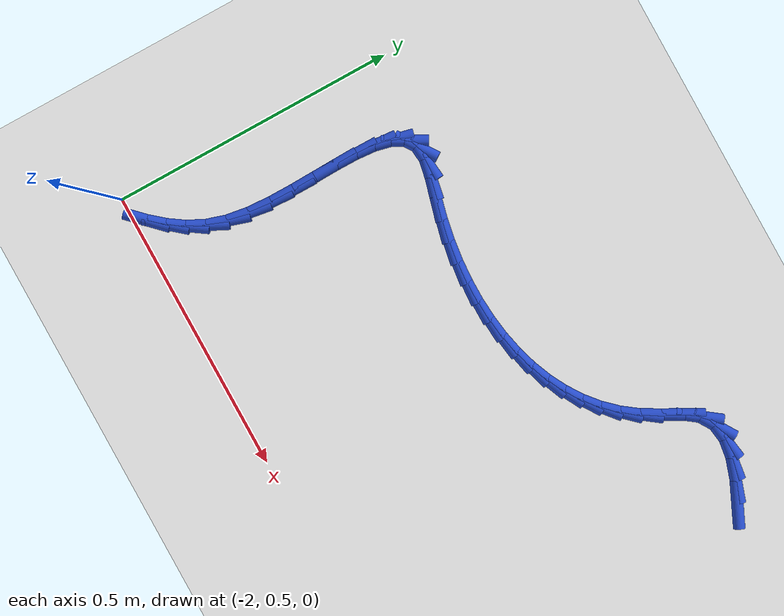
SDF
<sdf version="1.6">
 <world name="default">
  <model name="ground_plane">
   <static>1</static>
   <link name="link">
    <collision name="collision">
     <geometry><plane><normal>0 0 1</normal><size>100 100</size></plane></geometry>
     <surface><friction><ode><mu>100</mu><mu2>50</mu2></ode></friction></surface>
    </collision>
    <visual name="visual">
     <cast_shadows>0</cast_shadows>
     <geometry><plane><normal>0 0 1</normal><size>100 100</size></plane></geometry>
     <material>
      <script><uri>file://media/materials/scripts/gazebo.material</uri><name>Gazebo/WhiteGlow</name></script>
     </material>
    </visual>
   </link>
  </model>
  <model name="line">
   <link name="link_58">
    <pose>-1.062486696908605 1.1520410922666753 0.01 0 1.57 -0.4289050384086867</pose>
    <collision name="collision">
     <geometry><cylinder><radius>0.01</radius><length>0.08</length></cylinder></geometry>
    </collision>
    <visual name="visual">
     <material>
      <script><name>Gazebo/Blue</name><uri>file://media/materials/scripts/gazebo.material</uri></script>
     </material>
     <geometry><cylinder><radius>0.01</radius><length>0.08</length></cylinder></geometry>
    </visual>
   </link>
   <link name="link_59">
    <pose>-1.1007309052672283 1.169530031824163 0.01 0 1.57 -0.32081166647994497</pose>
    <collision name="collision">
     <geometry><cylinder><radius>0.01</radius><length>0.08</length></cylinder></geometry>
    </collision>
    <visual name="visual">
     <material>
      <script><name>Gazebo/Blue</name><uri>file://media/materials/scripts/gazebo.material</uri></script>
     </material>
     <geometry><cylinder><radius>0.01</radius><length>0.08</length></cylinder></geometry>
    </visual>
   </link>
   <link name="link_60">
    <pose>-1.136575134614414 1.1814407269458471 0.01 0 1.57 -0.14341825878485148</pose>
    <collision name="collision">
     <geometry><cylinder><radius>0.01</radius><length>0.08</length></cylinder></geometry>
    </collision>
    <visual name="visual">
     <material>
      <script><name>Gazebo/Blue</name><uri>file://media/materials/scripts/gazebo.material</uri></script>
     </material>
     <geometry><cylinder><radius>0.01</radius><length>0.08</length></cylinder></geometry>
    </visual>
   </link>
   <link name="link_61">
    <pose>-1.1691019901014656 1.1861379213846197 0.01 0 1.57 0.14569953491411228</pose>
    <collision name="collision">
     <geometry><cylinder><radius>0.01</radius><length>0.08</length></cylinder></geometry>
    </collision>
    <visual name="visual">
     <material>
      <script><name>Gazebo/Blue</name><uri>file://media/materials/scripts/gazebo.material</uri></script>
     </material>
     <geometry><cylinder><radius>0.01</radius><length>0.08</length></cylinder></geometry>
    </visual>
   </link>
   <link name="link_62">
    <pose>-1.1973940768796858 1.1819863588933726 0.01 0 1.57 0.5636500221404637</pose>
    <collision name="collision">
     <geometry><cylinder><radius>0.01</radius><length>0.08</length></cylinder></geometry>
    </collision>
    <visual name="visual">
     <material>
      <script><name>Gazebo/Blue</name><uri>file://media/materials/scripts/gazebo.material</uri></script>
     </material>
     <geometry><cylinder><radius>0.01</radius><length>0.08</length></cylinder></geometry>
    </visual>
   </link>
   <link name="link_63">
    <pose>-1.2205383273197519 1.1673581293471802 0.01 0 1.57 0.9375242739846468</pose>
    <collision name="collision">
     <geometry><cylinder><radius>0.01</radius><length>0.08</length></cylinder></geometry>
    </collision>
    <visual name="visual">
     <material>
      <script><name>Gazebo/Blue</name><uri>file://media/materials/scripts/gazebo.material</uri></script>
     </material>
     <geometry><cylinder><radius>0.01</radius><length>0.08</length></cylinder></geometry>
    </visual>
   </link>
   <link name="link_64">
    <pose>-1.238753407983604 1.1425466159339859 0.01 0 1.57 1.0801588958837494</pose>
    <collision name="collision">
     <geometry><cylinder><radius>0.01</radius><length>0.08</length></cylinder></geometry>
    </collision>
    <visual name="visual">
     <material>
      <script><name>Gazebo/Blue</name><uri>file://media/materials/scripts/gazebo.material</uri></script>
     </material>
     <geometry><cylinder><radius>0.01</radius><length>0.08</length></cylinder></geometry>
    </visual>
   </link>
   <link name="link_65">
    <pose>-1.2548974371059798 1.1123260780825786 0.01 0 1.57 1.0526980294535568</pose>
    <collision name="collision">
     <geometry><cylinder><radius>0.01</radius><length>0.08</length></cylinder></geometry>
    </collision>
    <visual name="visual">
     <material>
      <script><name>Gazebo/Blue</name><uri>file://media/materials/scripts/gazebo.material</uri></script>
     </material>
     <geometry><cylinder><radius>0.01</radius><length>0.08</length></cylinder></geometry>
    </visual>
   </link>
   <link name="link_66">
    <pose>-1.2721612819006145 1.0820407266860472 0.01 0 1.57 0.9372776419822589</pose>
    <collision name="collision">
     <geometry><cylinder><radius>0.01</radius><length>0.08</length></cylinder></geometry>
    </collision>
    <visual name="visual">
     <material>
      <script><name>Gazebo/Blue</name><uri>file://media/materials/scripts/gazebo.material</uri></script>
     </material>
     <geometry><cylinder><radius>0.01</radius><length>0.08</length></cylinder></geometry>
    </visual>
   </link>
   <link name="link_67">
    <pose>-1.2922511116314963 1.0546896834798576 0.01 0 1.57 0.8176120668281966</pose>
    <collision name="collision">
     <geometry><cylinder><radius>0.01</radius><length>0.08</length></cylinder></geometry>
    </collision>
    <visual name="visual">
     <material>
      <script><name>Gazebo/Blue</name><uri>file://media/materials/scripts/gazebo.material</uri></script>
     </material>
     <geometry><cylinder><radius>0.01</radius><length>0.08</length></cylinder></geometry>
    </visual>
   </link>
   <link name="link_68">
    <pose>-1.3150424403924694 1.0303805395742782 0.01 0 1.57 0.7015213070041155</pose>
    <collision name="collision">
     <geometry><cylinder><radius>0.01</radius><length>0.08</length></cylinder></geometry>
    </collision>
    <visual name="visual">
     <material>
      <script><name>Gazebo/Blue</name><uri>file://media/materials/scripts/gazebo.material</uri></script>
     </material>
     <geometry><cylinder><radius>0.01</radius><length>0.08</length></cylinder></geometry>
    </visual>
   </link>
   <link name="link_69">
    <pose>-1.3402978207778222 1.0090424627256023 0.01 0 1.57 0.5909321300325567</pose>
    <collision name="collision">
     <geometry><cylinder><radius>0.01</radius><length>0.08</length></cylinder></geometry>
    </collision>
    <visual name="visual">
     <material>
      <script><name>Gazebo/Blue</name><uri>file://media/materials/scripts/gazebo.material</uri></script>
     </material>
     <geometry><cylinder><radius>0.01</radius><length>0.08</length></cylinder></geometry>
    </visual>
   </link>
   <link name="link_70">
    <pose>-1.3677798053818442 0.9906046206901238 0.01 0 1.57 0.4870601055811412</pose>
    <collision name="collision">
     <geometry><cylinder><radius>0.01</radius><length>0.08</length></cylinder></geometry>
    </collision>
    <visual name="visual">
     <material>
      <script><name>Gazebo/Blue</name><uri>file://media/materials/scripts/gazebo.material</uri></script>
     </material>
     <geometry><cylinder><radius>0.01</radius><length>0.08</length></cylinder></geometry>
    </visual>
   </link>
   <link name="link_71">
    <pose>-1.3972509467988241 0.974996181224137 0.01 0 1.57 0.39042632257762094</pose>
    <collision name="collision">
     <geometry><cylinder><radius>0.01</radius><length>0.08</length></cylinder></geometry>
    </collision>
    <visual name="visual">
     <material>
      <script><name>Gazebo/Blue</name><uri>file://media/materials/scripts/gazebo.material</uri></script>
     </material>
     <geometry><cylinder><radius>0.01</radius><length>0.08</length></cylinder></geometry>
    </visual>
   </link>
   <link name="link_72">
    <pose>-1.428473797623051 0.9621463120839354 0.01 0 1.57 0.30098536017209043</pose>
    <collision name="collision">
     <geometry><cylinder><radius>0.01</radius><length>0.08</length></cylinder></geometry>
    </collision>
    <visual name="visual">
     <material>
      <script><name>Gazebo/Blue</name><uri>file://media/materials/scripts/gazebo.material</uri></script>
     </material>
     <geometry><cylinder><radius>0.01</radius><length>0.08</length></cylinder></geometry>
    </visual>
   </link>
   <link name="link_73">
    <pose>-1.4612109104488142 0.951984181025813 0.01 0 1.57 0.21829278797396418</pose>
    <collision name="collision">
     <geometry><cylinder><radius>0.01</radius><length>0.08</length></cylinder></geometry>
    </collision>
    <visual name="visual">
     <material>
      <script><name>Gazebo/Blue</name><uri>file://media/materials/scripts/gazebo.material</uri></script>
     </material>
     <geometry><cylinder><radius>0.01</radius><length>0.08</length></cylinder></geometry>
    </visual>
   </link>
   <link name="link_74">
    <pose>-1.4952248378704032 0.9444389558060627 0.01 0 1.57 0.14166047389862013</pose>
    <collision name="collision">
     <geometry><cylinder><radius>0.01</radius><length>0.08</length></cylinder></geometry>
    </collision>
    <visual name="visual">
     <material>
      <script><name>Gazebo/Blue</name><uri>file://media/materials/scripts/gazebo.material</uri></script>
     </material>
     <geometry><cylinder><radius>0.01</radius><length>0.08</length></cylinder></geometry>
    </visual>
   </link>
   <link name="link_75">
    <pose>-1.5302781324821064 0.9394398041809794 0.01 0 1.57 0.07027580262535414</pose>
    <collision name="collision">
     <geometry><cylinder><radius>0.01</radius><length>0.08</length></cylinder></geometry>
    </collision>
    <visual name="visual">
     <material>
      <script><name>Gazebo/Blue</name><uri>file://media/materials/scripts/gazebo.material</uri></script>
     </material>
     <geometry><cylinder><radius>0.01</radius><length>0.08</length></cylinder></geometry>
    </visual>
   </link>
   <link name="link_76">
    <pose>-1.5661333468782126 0.936915893906856 0.01 0 1.57 0.0032812126788304657</pose>
    <collision name="collision">
     <geometry><cylinder><radius>0.01</radius><length>0.08</length></cylinder></geometry>
    </collision>
    <visual name="visual">
     <material>
      <script><name>Gazebo/Blue</name><uri>file://media/materials/scripts/gazebo.material</uri></script>
     </material>
     <geometry><cylinder><radius>0.01</radius><length>0.08</length></cylinder></geometry>
    </visual>
   </link>
   <link name="link_77">
    <pose>-1.6025530336530118 0.9367963927399872 0.01 0 1.57 -0.06017959501228952</pose>
    <collision name="collision">
     <geometry><cylinder><radius>0.01</radius><length>0.08</length></cylinder></geometry>
    </collision>
    <visual name="visual">
     <material>
      <script><name>Gazebo/Blue</name><uri>file://media/materials/scripts/gazebo.material</uri></script>
     </material>
     <geometry><cylinder><radius>0.01</radius><length>0.08</length></cylinder></geometry>
    </visual>
   </link>
   <link name="link_78">
    <pose>-1.6392997454007927 0.939010468436666 0.01 0 1.57 -0.12093977044117313</pose>
    <collision name="collision">
     <geometry><cylinder><radius>0.01</radius><length>0.08</length></cylinder></geometry>
    </collision>
    <visual name="visual">
     <material>
      <script><name>Gazebo/Blue</name><uri>file://media/materials/scripts/gazebo.material</uri></script>
     </material>
     <geometry><cylinder><radius>0.01</radius><length>0.08</length></cylinder></geometry>
    </visual>
   </link>
   <link name="link_79">
    <pose>-1.6761360347158436 0.9434872887531863 0.01 0 1.57 -0.1798036585077314</pose>
    <collision name="collision">
     <geometry><cylinder><radius>0.01</radius><length>0.08</length></cylinder></geometry>
    </collision>
    <visual name="visual">
     <material>
      <script><name>Gazebo/Blue</name><uri>file://media/materials/scripts/gazebo.material</uri></script>
     </material>
     <geometry><cylinder><radius>0.01</radius><length>0.08</length></cylinder></geometry>
    </visual>
   </link>
   <link name="link_80">
    <pose>-1.7128244541924547 0.950156021445842 0.01 0 1.57 -0.2373349855445848</pose>
    <collision name="collision">
     <geometry><cylinder><radius>0.01</radius><length>0.08</length></cylinder></geometry>
    </collision>
    <visual name="visual">
     <material>
      <script><name>Gazebo/Blue</name><uri>file://media/materials/scripts/gazebo.material</uri></script>
     </material>
     <geometry><cylinder><radius>0.01</radius><length>0.08</length></cylinder></geometry>
    </visual>
   </link>
   <link name="link_81">
    <pose>-1.7491224515154316 0.9589362864791022 0.01 0 1.57 -0.2638277677272516</pose>
    <collision name="collision">
     <geometry><cylinder><radius>0.01</radius><length>0.08</length></cylinder></geometry>
    </collision>
    <visual name="visual">
     <material>
      <script><name>Gazebo/Blue</name><uri>file://media/materials/scripts/gazebo.material</uri></script>
     </material>
     <geometry><cylinder><radius>0.01</radius><length>0.08</length></cylinder></geometry>
    </visual>
   </link>
   <link name="link_82">
    <pose>-1.7840516717752724 0.9683715207493558 0.01 0 1.57 -0.18549093791289198</pose>
    <collision name="collision">
     <geometry><cylinder><radius>0.01</radius><length>0.08</length></cylinder></geometry>
    </collision>
    <visual name="visual">
     <material>
      <script><name>Gazebo/Blue</name><uri>file://media/materials/scripts/gazebo.material</uri></script>
     </material>
     <geometry><cylinder><radius>0.01</radius><length>0.08</length></cylinder></geometry>
    </visual>
   </link>
   <link name="link_83">
    <pose>-1.8151363305515076 0.9742044953839641 0.01 0 1.57 0.0914731281070664</pose>
    <collision name="collision">
     <geometry><cylinder><radius>0.01</radius><length>0.08</length></cylinder></geometry>
    </collision>
    <visual name="visual">
     <material>
      <script><name>Gazebo/Blue</name><uri>file://media/materials/scripts/gazebo.material</uri></script>
     </material>
     <geometry><cylinder><radius>0.01</radius><length>0.08</length></cylinder></geometry>
    </visual>
   </link>
   <link name="link_84">
    <pose>-1.8397866451607399 0.9719433438743926 0.01 0 1.57 0.6060923670369702</pose>
    <collision name="collision">
     <geometry><cylinder><radius>0.01</radius><length>0.08</length></cylinder></geometry>
    </collision>
    <visual name="visual">
     <material>
      <script><name>Gazebo/Blue</name><uri>file://media/materials/scripts/gazebo.material</uri></script>
     </material>
     <geometry><cylinder><radius>0.01</radius><length>0.08</length></cylinder></geometry>
    </visual>
   </link>
   <link name="link_85">
    <pose>-1.8571992056714965 0.9598743810686025 0.01 0 1.57 1.0695171573963607</pose>
    <collision name="collision">
     <geometry><cylinder><radius>0.01</radius><length>0.08</length></cylinder></geometry>
    </collision>
    <visual name="visual">
     <material>
      <script><name>Gazebo/Blue</name><uri>file://media/materials/scripts/gazebo.material</uri></script>
     </material>
     <geometry><cylinder><radius>0.01</radius><length>0.08</length></cylinder></geometry>
    </visual>
   </link>
   <link name="link_86">
    <pose>-1.8684901258223776 0.939269180556217 0.01 0 1.57 1.3445959728615535</pose>
    <collision name="collision">
     <geometry><cylinder><radius>0.01</radius><length>0.08</length></cylinder></geometry>
    </collision>
    <visual name="visual">
     <material>
      <script><name>Gazebo/Blue</name><uri>file://media/materials/scripts/gazebo.material</uri></script>
     </material>
     <geometry><cylinder><radius>0.01</radius><length>0.08</length></cylinder></geometry>
    </visual>
   </link>
   <link name="link_87">
    <pose>-1.8748701850590566 0.9115465408003935 0.01 0 1.57 1.4907797735621018</pose>
    <collision name="collision">
     <geometry><cylinder><radius>0.01</radius><length>0.08</length></cylinder></geometry>
    </collision>
    <visual name="visual">
     <material>
      <script><name>Gazebo/Blue</name><uri>file://media/materials/scripts/gazebo.material</uri></script>
     </material>
     <geometry><cylinder><radius>0.01</radius><length>0.08</length></cylinder></geometry>
    </visual>
   </link>
   <link name="link_88">
    <pose>-1.8775501628272058 0.8781252602642894 0.01 0 1.57 1.565738808473762</pose>
    <collision name="collision">
     <geometry><cylinder><radius>0.01</radius><length>0.08</length></cylinder></geometry>
    </collision>
    <visual name="visual">
     <material>
      <script><name>Gazebo/Blue</name><uri>file://media/materials/scripts/gazebo.material</uri></script>
     </material>
     <geometry><cylinder><radius>0.01</radius><length>0.08</length></cylinder></geometry>
    </visual>
   </link>
   <link name="link_89">
    <pose>-1.8777408385724987 0.840424137411062 0.01 0 1.57 -1.543983505553009</pose>
    <collision name="collision">
     <geometry><cylinder><radius>0.01</radius><length>0.08</length></cylinder></geometry>
    </collision>
    <visual name="visual">
     <material>
      <script><name>Gazebo/Blue</name><uri>file://media/materials/scripts/gazebo.material</uri></script>
     </material>
     <geometry><cylinder><radius>0.01</radius><length>0.08</length></cylinder></geometry>
    </visual>
   </link>
   <link name="link_90">
    <pose>-1.8766529917406076 0.7998619707038693 0.01 0 1.57 -1.5432921076750588</pose>
    <collision name="collision">
     <geometry><cylinder><radius>0.01</radius><length>0.08</length></cylinder></geometry>
    </collision>
    <visual name="visual">
     <material>
      <script><name>Gazebo/Blue</name><uri>file://media/materials/scripts/gazebo.material</uri></script>
     </material>
     <geometry><cylinder><radius>0.01</radius><length>0.08</length></cylinder></geometry>
    </visual>
   </link>
   <link name="link_91">
    <pose>-1.8754974017772053 0.7578575586058687 0.01 0 1.57 -1.5704976285228711</pose>
    <collision name="collision">
     <geometry><cylinder><radius>0.01</radius><length>0.08</length></cylinder></geometry>
    </collision>
    <visual name="visual">
     <material>
      <script><name>Gazebo/Blue</name><uri>file://media/materials/scripts/gazebo.material</uri></script>
     </material>
     <geometry><cylinder><radius>0.01</radius><length>0.08</length></cylinder></geometry>
    </visual>
   </link>
   <link name="link_92">
    <pose>-1.875484848127964 0.7158296995802172 0.01 0 1.57 1.5132395497271496</pose>
    <collision name="collision">
     <geometry><cylinder><radius>0.01</radius><length>0.08</length></cylinder></geometry>
    </collision>
    <visual name="visual">
     <material>
      <script><name>Gazebo/Blue</name><uri>file://media/materials/scripts/gazebo.material</uri></script>
     </material>
     <geometry><cylinder><radius>0.01</radius><length>0.08</length></cylinder></geometry>
    </visual>
   </link>
   <link name="link_93">
    <pose>-1.877826110238558 0.6751971920900727 0.01 0 1.57 1.4158837600213905</pose>
    <collision name="collision">
     <geometry><cylinder><radius>0.01</radius><length>0.08</length></cylinder></geometry>
    </collision>
    <visual name="visual">
     <material>
      <script><name>Gazebo/Blue</name><uri>file://media/materials/scripts/gazebo.material</uri></script>
     </material>
     <geometry><cylinder><radius>0.01</radius><length>0.08</length></cylinder></geometry>
    </visual>
   </link>
   <link name="link_94">
    <pose>-1.8837319675546587 0.6373788345985928 0.01 0 1.57 1.2708187977692431</pose>
    <collision name="collision">
     <geometry><cylinder><radius>0.01</radius><length>0.08</length></cylinder></geometry>
    </collision>
    <visual name="visual">
     <material>
      <script><name>Gazebo/Blue</name><uri>file://media/materials/scripts/gazebo.material</uri></script>
     </material>
     <geometry><cylinder><radius>0.01</radius><length>0.08</length></cylinder></geometry>
    </visual>
   </link>
   <link name="link_95">
    <pose>-1.89419452177537 0.6035535488547844 0.01 0 1.57 1.1150797358723572</pose>
    <collision name="collision">
     <geometry><cylinder><radius>0.01</radius><length>0.08</length></cylinder></geometry>
    </collision>
    <visual name="visual">
     <material>
      <script><name>Gazebo/Blue</name><uri>file://media/materials/scripts/gazebo.material</uri></script>
     </material>
     <geometry><cylinder><radius>0.01</radius><length>0.08</length></cylinder></geometry>
    </visual>
   </link>
   <link name="link_96">
    <pose>-1.908926215832952 0.5734965456903869 0.01 0 1.57 0.9768193191954888</pose>
    <collision name="collision">
     <geometry><cylinder><radius>0.01</radius><length>0.08</length></cylinder></geometry>
    </collision>
    <visual name="visual">
     <material>
      <script><name>Gazebo/Blue</name><uri>file://media/materials/scripts/gazebo.material</uri></script>
     </material>
     <geometry><cylinder><radius>0.01</radius><length>0.08</length></cylinder></geometry>
    </visual>
   </link>
   <link name="link_97">
    <pose>-1.927175405400837 0.5464739593233855 0.01 0 1.57 0.8663009532078639</pose>
    <collision name="collision">
     <geometry><cylinder><radius>0.01</radius><length>0.08</length></cylinder></geometry>
    </collision>
    <visual name="visual">
     <material>
      <script><name>Gazebo/Blue</name><uri>file://media/materials/scripts/gazebo.material</uri></script>
     </material>
     <geometry><cylinder><radius>0.01</radius><length>0.08</length></cylinder></geometry>
    </visual>
   </link>
   <link name="link_98">
    <pose>-1.9481897967299278 0.5217512115931884 0.01 0 1.57 0.7882170043526974</pose>
    <collision name="collision">
     <geometry><cylinder><radius>0.01</radius><length>0.08</length></cylinder></geometry>
    </collision>
    <visual name="visual">
     <material>
      <script><name>Gazebo/Blue</name><uri>file://media/materials/scripts/gazebo.material</uri></script>
     </material>
     <geometry><cylinder><radius>0.01</radius><length>0.08</length></cylinder></geometry>
    </visual>
   </link>
  </model>
 </world>
</sdf>
